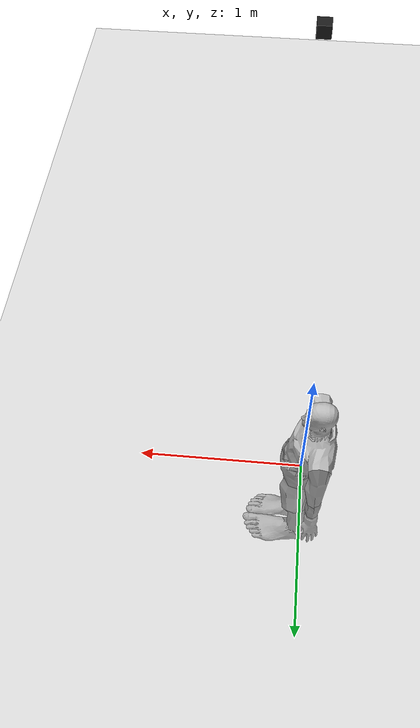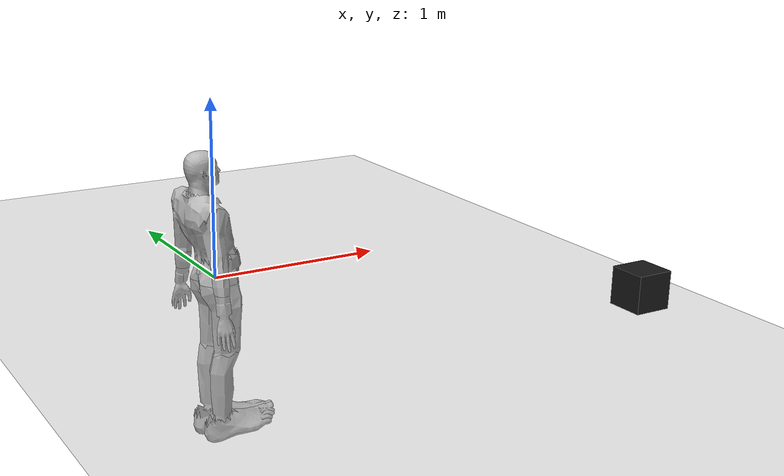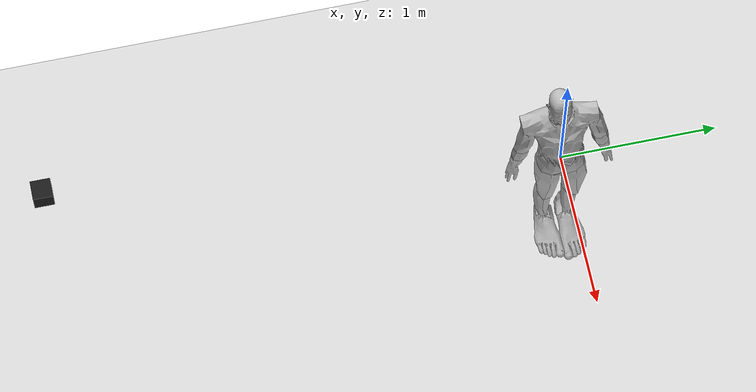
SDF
<?xml version="1.0" ?>
<sdf version="1.8">
  <world name="walking">
    <physics name="100hz" type="ignored"><max_step_size>0.001</max_step_size>
      <real_time_factor>1.0</real_time_factor></physics>
    <plugin filename="gz-sim-physics-system" name="gz::sim::systems::Physics"/>
    <plugin filename="gz-sim-sensors-system" name="gz::sim::systems::Sensors">
      <render_engine>ogre2</render_engine>
    </plugin>
    <plugin filename="gz-sim-user-commands-system" name="gz::sim::systems::UserCommands"/>
    <plugin filename="gz-sim-scene-broadcaster-system" name="gz::sim::systems::SceneBroadcaster"/>

    <light type="directional" name="sun">
      <cast_shadows>true</cast_shadows><pose>0 0 10 0 0 0</pose>
      <diffuse>0.9 0.9 0.9 1</diffuse><specular>0.2 0.2 0.2 1</specular>
      <direction>-0.5 0.3 -0.9</direction>
    </light>

    <model name="ground_plane">
      <static>true</static>
      <link name="link">
        <collision name="c"><geometry><plane><normal>0 0 1</normal><size>50 50</size></plane></geometry></collision>
        <visual name="v"><geometry><plane><normal>0 0 1</normal><size>50 50</size></plane></geometry>
          <material><ambient>0.7 0.7 0.7 1</ambient><diffuse>0.6 0.6 0.6 1</diffuse></material></visual>
      </link>
    </model>

    <model name="human">
      <pose>0 0 0 0 0 0</pose>
      <link name="pelvis">
        <pose>0 0 0 0 0 0</pose>
        <inertial><mass>3.0</mass><inertia><ixx>0.01352</ixx><iyy>0.01352</iyy><izz>0.01084</izz><ixy>0</ixy><ixz>0</ixz><iyz>0</iyz></inertia></inertial>

        <visual name="torso_v">
          <geometry><mesh><uri>file:///mnt/e/OpenSim/gazebo_gait/meshes/torso.obj</uri></mesh></geometry>
        </visual>

        <visual name="skin_v">
          <geometry><mesh><uri>file:///mnt/e/OpenSim/gazebo_gait/meshes/skin.obj</uri></mesh></geometry>
        </visual>
        <collision name="torso_c"><pose>0 0 0.26010000000000005 0 0 0</pose>
          <geometry><cylinder><radius>0.085</radius><length>0.5202000000000001</length></cylinder></geometry>
        </collision>
      </link>
      <joint name="anchor" type="prismatic"><parent>world</parent><child>pelvis</child>
        <axis><xyz>0 0 1</xyz>
          <limit><lower>0</lower><upper>1.5</upper><effort>8000</effort></limit>
          <dynamics><damping>5</damping></dynamics></axis>
      </joint>

      <joint name="hip_flexion_r" type="revolute">
        <pose relative_to="pelvis">0 -0.0900 0 0 0 0</pose>
        <parent>pelvis</parent>
        <child>hipflex_r</child>
        <axis><xyz>0 1 0</xyz><limit><lower>-2.0</lower><upper>2.0</upper><effort>500</effort></limit><dynamics><damping>0.5</damping></dynamics></axis>
      </joint>
      <link name="hipflex_r">
        <pose relative_to="hip_flexion_r">0 0 0 0 0 0</pose>
        <inertial><mass>0.05</mass><inertia><ixx>1e-4</ixx><iyy>1e-4</iyy><izz>1e-4</izz>
          <ixy>0</ixy><ixz>0</ixz><iyz>0</iyz></inertia></inertial>
      </link>
      <joint name="hip_adduction_r" type="revolute">
        <pose relative_to="hip_flexion_r">0 0 0 0 0 0</pose>
        <parent>hipflex_r</parent>
        <child>thigh_r</child>
        <axis><xyz>1 0 0</xyz><limit><lower>-2.0</lower><upper>2.0</upper><effort>500</effort></limit><dynamics><damping>0.5</damping></dynamics></axis>
      </joint>
      <link name="thigh_r">
        <pose relative_to="hip_adduction_r">0 0 0 0 0 0</pose>
        <inertial><mass>1.5</mass><inertia><ixx>0.02303</ixx><iyy>0.02303</iyy><izz>0.00270</izz><ixy>0</ixy><ixz>0</ixz><iyz>0</iyz></inertia></inertial>

        <visual name="thigh_r_v">
          <geometry><mesh><uri>file:///mnt/e/OpenSim/gazebo_gait/meshes/thigh_r.obj</uri></mesh></geometry>
        </visual>
        <collision name="thigh_r_c">
          <pose>0 0 -0.2082 0 0 0</pose>
          <geometry><cylinder><radius>0.06</radius><length>0.4165</length></cylinder></geometry>
        </collision>
      </link>
      <joint name="knee_angle_r" type="revolute">
        <pose relative_to="thigh_r">0 0 -0.4165 0 0 0</pose>
        <parent>thigh_r</parent>
        <child>shank_r</child>
        <axis><xyz>0 1 0</xyz><limit><lower>-2.0</lower><upper>2.0</upper><effort>500</effort></limit><dynamics><damping>0.5</damping></dynamics></axis>
      </joint>
      <link name="shank_r">
        <pose relative_to="knee_angle_r">0 0 0 0 0 0</pose>
        <inertial><mass>0.8</mass><inertia><ixx>0.01216</ixx><iyy>0.01216</iyy><izz>0.00100</izz><ixy>0</ixy><ixz>0</ixz><iyz>0</iyz></inertia></inertial>

        <visual name="shank_r_v">
          <geometry><mesh><uri>file:///mnt/e/OpenSim/gazebo_gait/meshes/shank_r.obj</uri></mesh></geometry>
        </visual>
        <collision name="shank_r_c">
          <pose>0 0 -0.2091 0 0 0</pose>
          <geometry><cylinder><radius>0.05</radius><length>0.4182</length></cylinder></geometry>
        </collision>
      </link>
      <joint name="ankle_angle_r" type="revolute">
        <pose relative_to="shank_r">0 0 -0.4182 0 0 0</pose>
        <parent>shank_r</parent>
        <child>foot_r</child>
        <axis><xyz>0 1 0</xyz><limit><lower>-2.0</lower><upper>2.0</upper><effort>500</effort></limit><dynamics><damping>0.5</damping></dynamics></axis>
      </joint>
      <link name="foot_r">
        <pose relative_to="ankle_angle_r">0 0 0 0 0 0</pose>
        <inertial><mass>0.3</mass><inertia><ixx>0.00182</ixx><iyy>0.00182</iyy><izz>0.00030</izz><ixy>0</ixy><ixz>0</ixz><iyz>0</iyz></inertia></inertial>

        <visual name="foot_r_v">
          <geometry><mesh><uri>file:///mnt/e/OpenSim/gazebo_gait/meshes/foot_r.obj</uri></mesh></geometry>
        </visual>
        <collision name="foot_r_c">
          <pose>0.1292 0 0 0 1.5708 0</pose>
          <geometry><cylinder><radius>0.045</radius><length>0.2584</length></cylinder></geometry>
        </collision>
      </link>
      <joint name="hip_flexion_l" type="revolute">
        <pose relative_to="pelvis">0 0.0900 0 0 0 0</pose>
        <parent>pelvis</parent>
        <child>hipflex_l</child>
        <axis><xyz>0 1 0</xyz><limit><lower>-2.0</lower><upper>2.0</upper><effort>500</effort></limit><dynamics><damping>0.5</damping></dynamics></axis>
      </joint>
      <link name="hipflex_l">
        <pose relative_to="hip_flexion_l">0 0 0 0 0 0</pose>
        <inertial><mass>0.05</mass><inertia><ixx>1e-4</ixx><iyy>1e-4</iyy><izz>1e-4</izz>
          <ixy>0</ixy><ixz>0</ixz><iyz>0</iyz></inertia></inertial>
      </link>
      <joint name="hip_adduction_l" type="revolute">
        <pose relative_to="hip_flexion_l">0 0 0 0 0 0</pose>
        <parent>hipflex_l</parent>
        <child>thigh_l</child>
        <axis><xyz>1 0 0</xyz><limit><lower>-2.0</lower><upper>2.0</upper><effort>500</effort></limit><dynamics><damping>0.5</damping></dynamics></axis>
      </joint>
      <link name="thigh_l">
        <pose relative_to="hip_adduction_l">0 0 0 0 0 0</pose>
        <inertial><mass>1.5</mass><inertia><ixx>0.02303</ixx><iyy>0.02303</iyy><izz>0.00270</izz><ixy>0</ixy><ixz>0</ixz><iyz>0</iyz></inertia></inertial>

        <visual name="thigh_l_v">
          <geometry><mesh><uri>file:///mnt/e/OpenSim/gazebo_gait/meshes/thigh_l.obj</uri></mesh></geometry>
        </visual>
        <collision name="thigh_l_c">
          <pose>0 0 -0.2082 0 0 0</pose>
          <geometry><cylinder><radius>0.06</radius><length>0.4165</length></cylinder></geometry>
        </collision>
      </link>
      <joint name="knee_angle_l" type="revolute">
        <pose relative_to="thigh_l">0 0 -0.4165 0 0 0</pose>
        <parent>thigh_l</parent>
        <child>shank_l</child>
        <axis><xyz>0 1 0</xyz><limit><lower>-2.0</lower><upper>2.0</upper><effort>500</effort></limit><dynamics><damping>0.5</damping></dynamics></axis>
      </joint>
      <link name="shank_l">
        <pose relative_to="knee_angle_l">0 0 0 0 0 0</pose>
        <inertial><mass>0.8</mass><inertia><ixx>0.01216</ixx><iyy>0.01216</iyy><izz>0.00100</izz><ixy>0</ixy><ixz>0</ixz><iyz>0</iyz></inertia></inertial>

        <visual name="shank_l_v">
          <geometry><mesh><uri>file:///mnt/e/OpenSim/gazebo_gait/meshes/shank_l.obj</uri></mesh></geometry>
        </visual>
        <collision name="shank_l_c">
          <pose>0 0 -0.2091 0 0 0</pose>
          <geometry><cylinder><radius>0.05</radius><length>0.4182</length></cylinder></geometry>
        </collision>
      </link>
      <joint name="ankle_angle_l" type="revolute">
        <pose relative_to="shank_l">0 0 -0.4182 0 0 0</pose>
        <parent>shank_l</parent>
        <child>foot_l</child>
        <axis><xyz>0 1 0</xyz><limit><lower>-2.0</lower><upper>2.0</upper><effort>500</effort></limit><dynamics><damping>0.5</damping></dynamics></axis>
      </joint>
      <link name="foot_l">
        <pose relative_to="ankle_angle_l">0 0 0 0 0 0</pose>
        <inertial><mass>0.3</mass><inertia><ixx>0.00182</ixx><iyy>0.00182</iyy><izz>0.00030</izz><ixy>0</ixy><ixz>0</ixz><iyz>0</iyz></inertia></inertial>

        <visual name="foot_l_v">
          <geometry><mesh><uri>file:///mnt/e/OpenSim/gazebo_gait/meshes/foot_l.obj</uri></mesh></geometry>
        </visual>
        <collision name="foot_l_c">
          <pose>0.1292 0 0 0 1.5708 0</pose>
          <geometry><cylinder><radius>0.045</radius><length>0.2584</length></cylinder></geometry>
        </collision>
      </link>
      <plugin filename="gz-sim-joint-state-publisher-system"
              name="gz::sim::systems::JointStatePublisher"/>

    <plugin filename="gz-sim-joint-position-controller-system"
            name="gz::sim::systems::JointPositionController">
      <joint_name>hip_flexion_r</joint_name>
      <topic>/human/cmd/hip_flexion_r</topic>
      <p_gain>600.0</p_gain><i_gain>20.0</i_gain><d_gain>8.0</d_gain>
    </plugin>
    <plugin filename="gz-sim-joint-position-controller-system"
            name="gz::sim::systems::JointPositionController">
      <joint_name>hip_adduction_r</joint_name>
      <topic>/human/cmd/hip_adduction_r</topic>
      <p_gain>600.0</p_gain><i_gain>20.0</i_gain><d_gain>8.0</d_gain>
    </plugin>
    <plugin filename="gz-sim-joint-position-controller-system"
            name="gz::sim::systems::JointPositionController">
      <joint_name>knee_angle_r</joint_name>
      <topic>/human/cmd/knee_angle_r</topic>
      <p_gain>600.0</p_gain><i_gain>20.0</i_gain><d_gain>8.0</d_gain>
    </plugin>
    <plugin filename="gz-sim-joint-position-controller-system"
            name="gz::sim::systems::JointPositionController">
      <joint_name>ankle_angle_r</joint_name>
      <topic>/human/cmd/ankle_angle_r</topic>
      <p_gain>600.0</p_gain><i_gain>20.0</i_gain><d_gain>8.0</d_gain>
    </plugin>
    <plugin filename="gz-sim-joint-position-controller-system"
            name="gz::sim::systems::JointPositionController">
      <joint_name>hip_flexion_l</joint_name>
      <topic>/human/cmd/hip_flexion_l</topic>
      <p_gain>600.0</p_gain><i_gain>20.0</i_gain><d_gain>8.0</d_gain>
    </plugin>
    <plugin filename="gz-sim-joint-position-controller-system"
            name="gz::sim::systems::JointPositionController">
      <joint_name>hip_adduction_l</joint_name>
      <topic>/human/cmd/hip_adduction_l</topic>
      <p_gain>600.0</p_gain><i_gain>20.0</i_gain><d_gain>8.0</d_gain>
    </plugin>
    <plugin filename="gz-sim-joint-position-controller-system"
            name="gz::sim::systems::JointPositionController">
      <joint_name>knee_angle_l</joint_name>
      <topic>/human/cmd/knee_angle_l</topic>
      <p_gain>600.0</p_gain><i_gain>20.0</i_gain><d_gain>8.0</d_gain>
    </plugin>
    <plugin filename="gz-sim-joint-position-controller-system"
            name="gz::sim::systems::JointPositionController">
      <joint_name>ankle_angle_l</joint_name>
      <topic>/human/cmd/ankle_angle_l</topic>
      <p_gain>600.0</p_gain><i_gain>20.0</i_gain><d_gain>8.0</d_gain>
    </plugin>
      <plugin filename="gz-sim-joint-position-controller-system"
              name="gz::sim::systems::JointPositionController">
        <joint_name>anchor</joint_name><topic>/human/cmd/pelvis_ty</topic>
        <p_gain>12000.0</p_gain><i_gain>0.0</i_gain><d_gain>150.0</d_gain>
      </plugin>
    </model>

    <model name="sensor_rig">
      <static>true</static>
      <pose>0 -3.2 0.95 0 0 1.5708</pose>
      <link name="link">
        <visual name="v"><geometry><box><size>0.12 0.12 0.12</size></box></geometry>
          <material><ambient>0.1 0.1 0.1 1</ambient><diffuse>0.1 0.1 0.1 1</diffuse></material></visual>
        <sensor name="camera" type="camera">
          <camera><horizontal_fov>1.20</horizontal_fov>
            <image><width>640</width><height>480</height></image>
            <clip><near>0.1</near><far>50</far></clip></camera>
          <always_on>1</always_on><update_rate>30</update_rate><topic>camera</topic>
        </sensor>
        <sensor name="lidar" type="gpu_lidar">
          <lidar><scan>
            <horizontal><samples>320</samples><resolution>1</resolution><min_angle>-0.7</min_angle><max_angle>0.7</max_angle></horizontal>
            <vertical><samples>32</samples><resolution>1</resolution><min_angle>-0.45</min_angle><max_angle>0.45</max_angle></vertical>
          </scan><range><min>0.2</min><max>40</max><resolution>0.005</resolution></range></lidar>
          <always_on>1</always_on><update_rate>20</update_rate><topic>lidar</topic>
        </sensor>
      </link>
    </model>
  </world>
</sdf>
